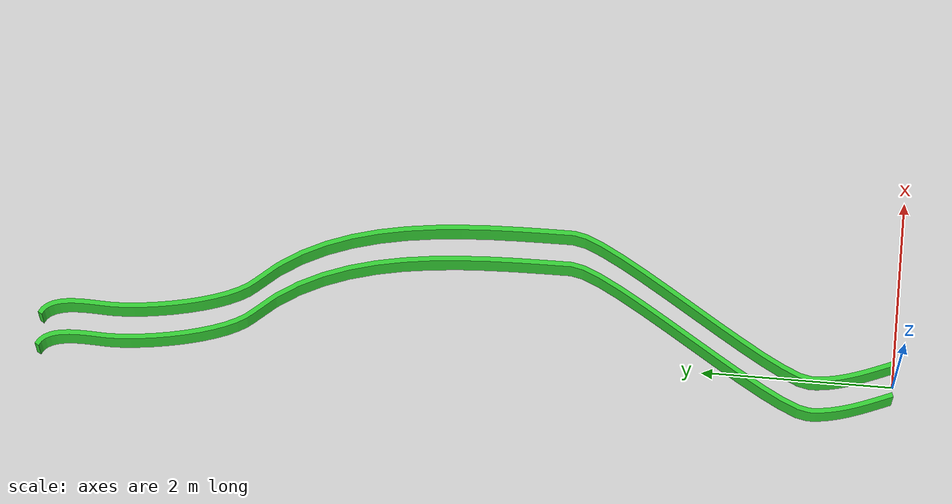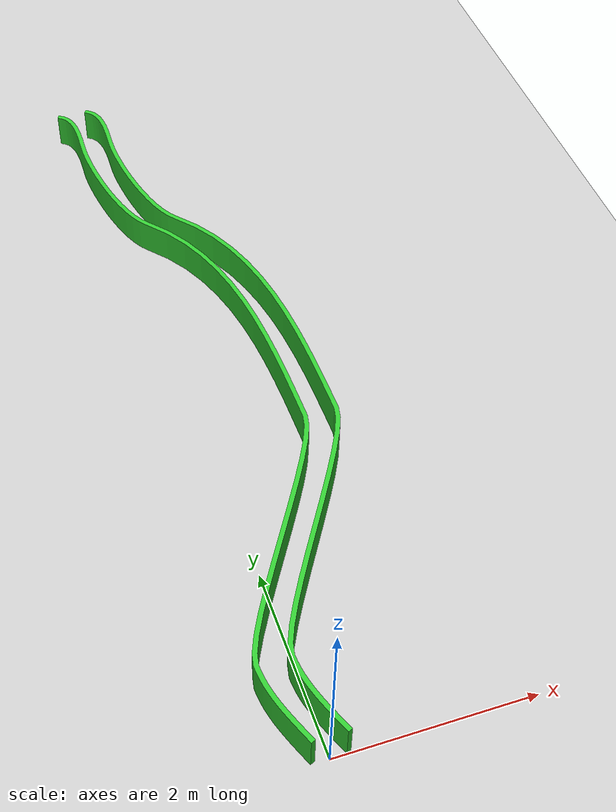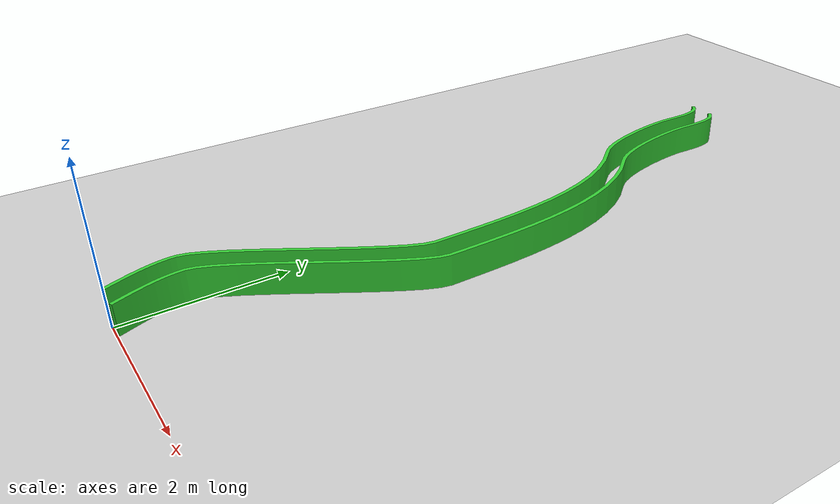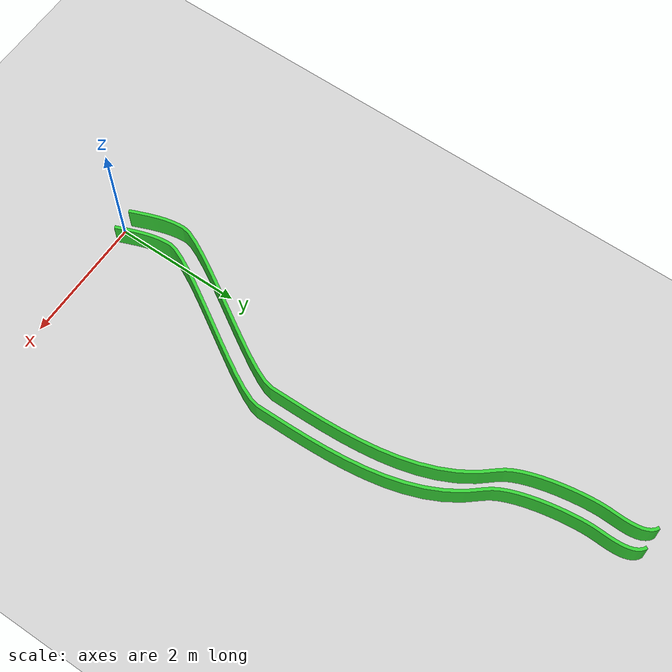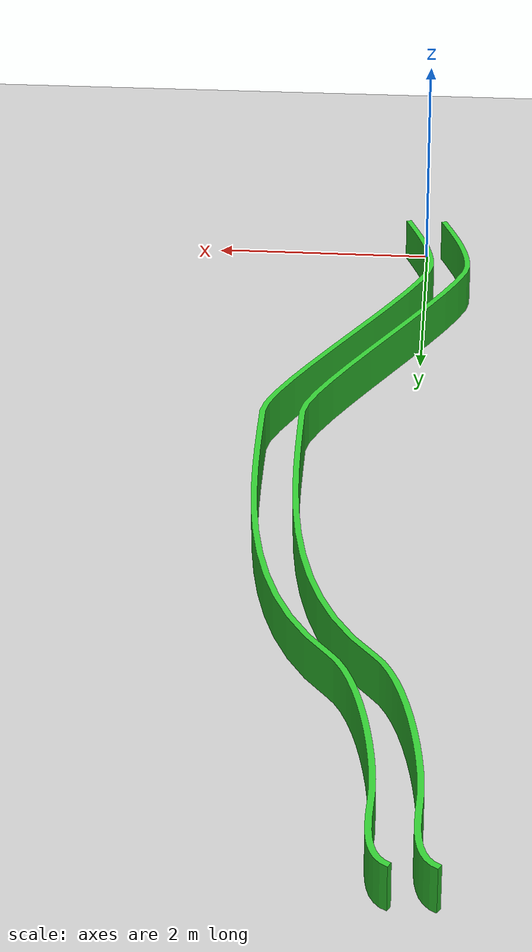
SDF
<?xml version="1.0" ?>
<sdf version="1.6">
  <world name="clean_farm_world">

    <physics name="1ms" type="ignored">
      <max_step_size>0.001</max_step_size>
      <real_time_factor>1.0</real_time_factor>
    </physics>
    <plugin
      filename="ignition-gazebo-physics-system"
      name="gz::sim::systems::Physics">
    </plugin>
    <plugin
      filename="ignition-gazebo-user-commands-system"
      name="gz::sim::systems::UserCommands">
    </plugin>
    <plugin
      filename="libignition-gazebo-sensors-system.so"
      name="ignition::gazebo::systems::Sensors">
      <render_engine>ogre2</render_engine>
    </plugin>
    <plugin
      filename="ignition-gazebo-scene-broadcaster-system"
      name="gz::sim::systems::SceneBroadcaster">
    </plugin>

    <light type="directional" name="sun">
      <cast_shadows>false</cast_shadows>
      <pose>0 0 10 0 0 0</pose>
      <diffuse>0.8 0.8 0.8 1</diffuse>
      <specular>0.2 0.2 0.2 1</specular>
      <attenuation>
        <range>1000</range>
        <constant>0.9</constant>
        <linear>0.01</linear>
        <quadratic>0.001</quadratic>
      </attenuation>
      <direction>-0.5 0.1 -0.9</direction>
    </light>

    <model name="ground_plane">
      <static>true</static>
      <link name="link">
        <collision name="collision">
          <geometry>
            <plane>
              <normal>0 0 1</normal>
              <size>100 100</size>
            </plane>
          </geometry>
        </collision>
        <visual name="visual">
          <geometry>
            <plane>
              <normal>0 0 1</normal>
              <size>100 100</size>
            </plane>
          </geometry>
          <material>
            <ambient>0.8 0.8 0.8 1</ambient>
            <diffuse>0.8 0.8 0.8 1</diffuse>
            <specular>0.8 0.8 0.8 1</specular>
          </material>
        </visual>
      </link>
    </model>

    <include>
      <name>farm_two</name>
      <uri>model://farm_model4</uri>     <!-- change farm model here -->
      <pose>0 0 0 0 0 0</pose>
    </include>

  </world>
</sdf>

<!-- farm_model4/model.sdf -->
<sdf version='1.6'>
  <model name='farm_model'>
    <static>true</static>
    <link name='link'>
      <pose>0 0 0 -1.570796 3.141592 0</pose>

      <collision name='collision'>
        <geometry>
          <mesh>
            <uri>model://farm_model4/meshes/untitled.stl</uri>
            <scale>1 1 1</scale>
          </mesh>
        </geometry>
      </collision>

      <visual name='visual'>
        <geometry>
          <mesh>
            <uri>model://farm_model4/meshes/untitled.stl</uri>
            <scale>1 1 1</scale>
          </mesh>
        </geometry>

        <material>
          <ambient>0.2 0.8 0.2 1.0</ambient>
          <diffuse>0.2 0.8 0.2 1.0</diffuse>
          <specular>0.1 0.1 0.1 1.0</specular>
        </material>

      </visual>
    </link>
  </model>
</sdf>
